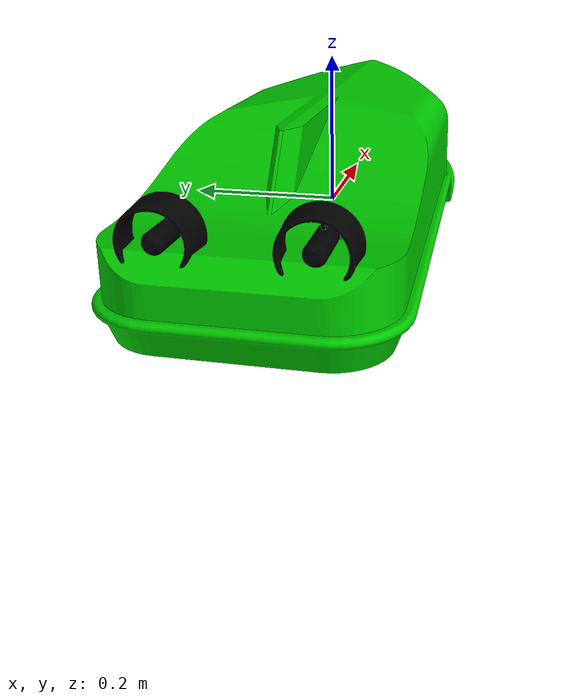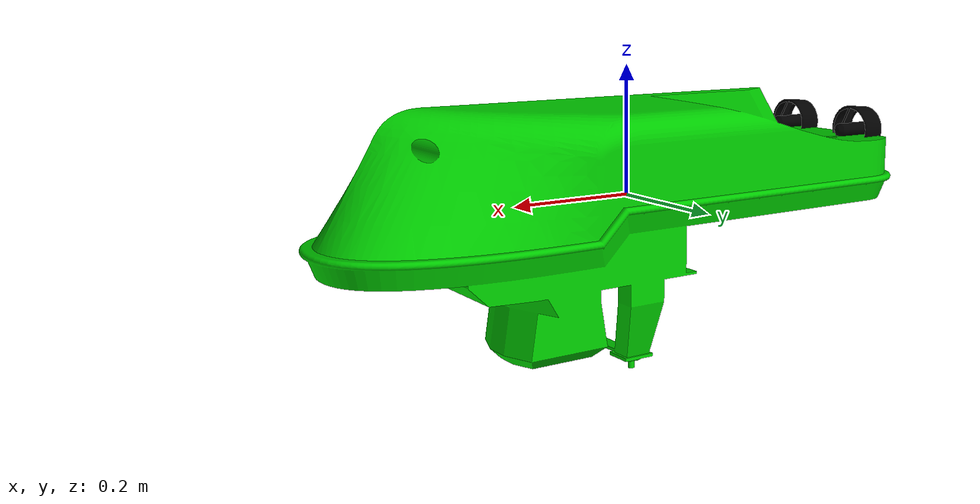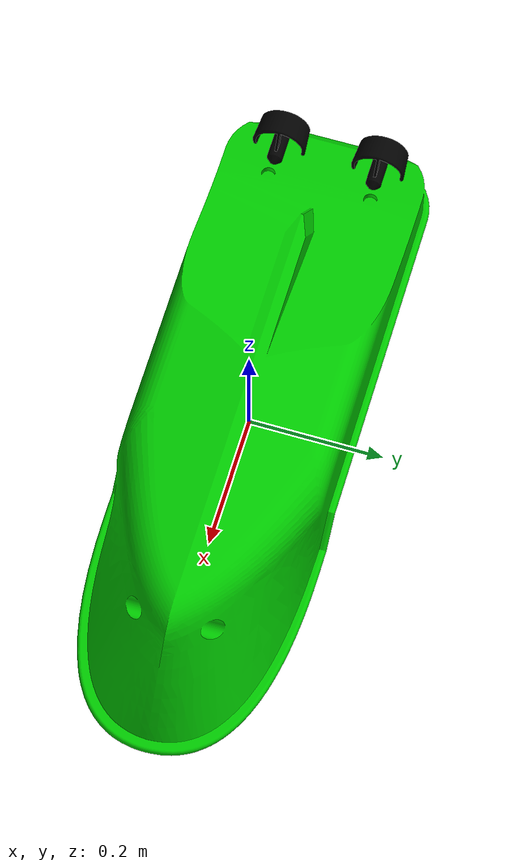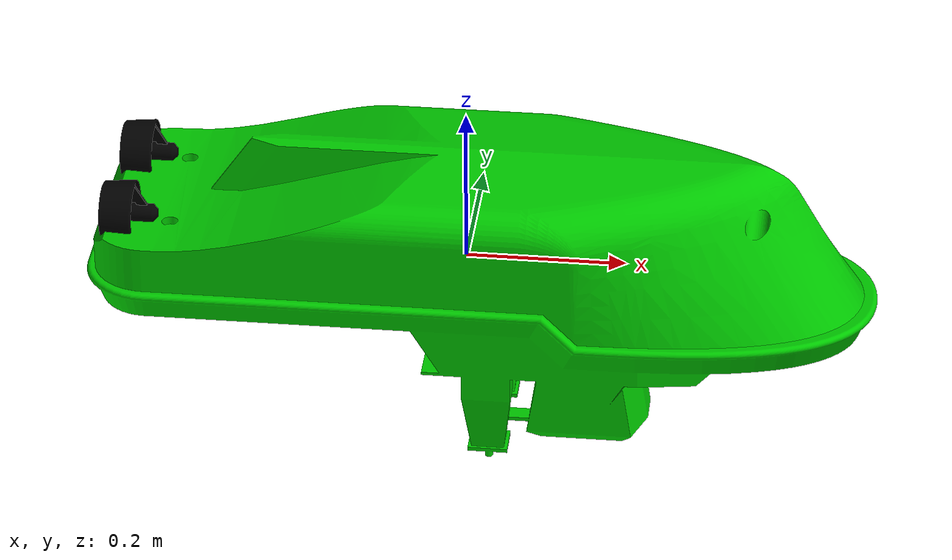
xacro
<?xml version="1.0"?>
<robot name="macroed" xmlns:xacro="http://ros.org/wiki/xacro">

 <xacro:arg name="vesselcolor" default="0 0.8 0 1"/>

  <material name="blue">
    <color rgba="0 0 0.8 1"/>
  </material>

  <material name="red">
    <color rgba="0.8 0 0 1"/>
  </material>

  <material name="green">
    <color rgba="0 0.8 0 1"/>
  </material>

  <material name="yellow">
    <color rgba="0.8 0.8 0 1"/>
  </material>

  <material name="orange">
    <color rgba="1 0.55 0 1"/>
  </material>

  <material name="purple">
    <color rgba="0.8 0 0.8 1"/>
  </material>

  <material name="lightblue">
    <color rgba="0 0.8 0.8 1"/>
  </material>

  <material name="black">
    <color rgba="0 0 0 1"/>
  </material>

  <material name="white">
    <color rgba="1 1 1 1"/>
  </material>

<!-- Default inertial parameters to use intil parameters are specified -->

  <xacro:macro name="default_inertial" params="mass">
    <inertial>
      <mass value="${mass}" />
      <inertia ixx="1e-3" ixy="0.0" ixz="0.0" iyy="1e-3" iyz="0.0" izz="1e-3" />
    </inertial>
  </xacro:macro>

<!-- The hull of the ship -->
  <link name="base_link">
    <visual>
      <origin xyz="-0.470 -0.165 0.170" rpy="${-pi/2} 0 0"/>
      <geometry>
         <mesh filename="package://ras_urdf_common/meshes/TN_hull_BB_1.stl" scale="0.001 0.001 0.001"/>
      </geometry>
      <material name="vesselcolor">
        <color rgba="$(arg vesselcolor)"/>
      </material>
    </visual>
    <collision>
      <origin xyz="0.510 0.165 0.140" rpy="${-pi/2} 0 ${pi}"/>
      <geometry>
      <!-- This is a coarse outline of the vessel, giving simple and intuitive base collision -->
        <mesh filename="package://ras_urdf_common/meshes/TN_collisionMesh1.stl" scale="0.001 0.001 0.001"/>
      </geometry>
    </collision>
  </link>

<!-- Macro for making azimuth thrusters link and joint-->
  <xacro:macro name="aft_thruster" params="prefix reflect">
    <link name="${prefix}_aft_thruster">
      <visual>
        <origin xyz="-0.108 -0.087 0.125" rpy="${-pi/2} 0 0" />
        <geometry>
          <mesh filename="package://ras_urdf_common/meshes/TN_propeller1.stl" scale="0.001 0.001 0.001"/>
        </geometry>
        <material name="black"/>
      </visual>
      <collision>
        <origin xyz="0 0 0.07" rpy="0 0 0" />
        <geometry>
          <box size="0.08 0.08 0.12"/>
        </geometry>
      </collision>
      <xacro:default_inertial mass="0.01"/>
    </link>

    <joint name="${prefix}_aft_thruster_joint" type="revolute">
      <axis xyz="0 0 1" rpy="0 0 0" />
      <limit effort="1000" lower="-2.356" upper="2.356" velocity="2.0"/>
      <parent link="base_link"/>
      <child link="${prefix}_aft_thruster"/>
      <origin xyz="${-0.405} ${reflect*0.075} 0" rpy="0 0 0"/>
    </joint>
  </xacro:macro>

<!-- Using the macro to make the thrusters -->
<xacro:aft_thruster prefix="SB" reflect="1.0"/>
<xacro:aft_thruster prefix="PS" reflect="-1.0"/>

</robot>
